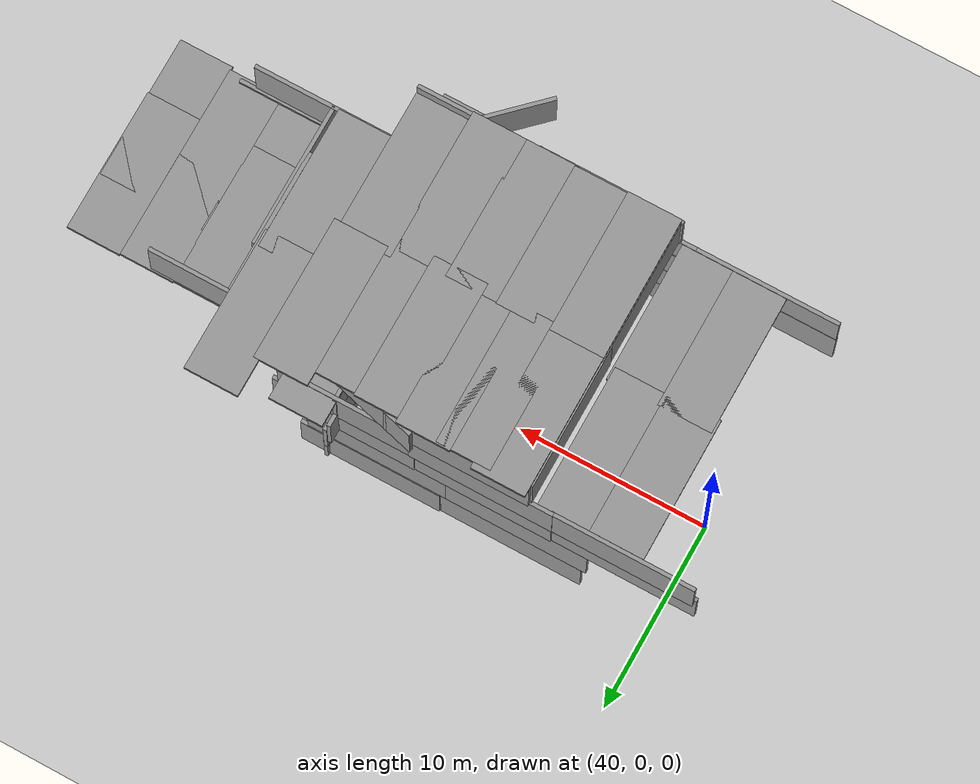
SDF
<sdf version="1.6">
 <world name="default">
  <model name="ground_plane">
   <static>1</static>
   <link name="link">
    <collision name="collision">
     <geometry><plane><normal>0 0 1</normal><size>5000 5000</size></plane></geometry>
     <surface><friction><ode><mu>100</mu><mu2>50</mu2></ode></friction></surface>
    </collision>
    <visual name="runway">
     <pose>0 0 0.005 0 -0 0</pose>
     <cast_shadows>0</cast_shadows>
     <geometry><plane><normal>0 0 1</normal><size>1829 45</size></plane></geometry>
     <material>
      <script><uri>file://media/materials/scripts/gazebo.material</uri><name>Gazebo/Runway</name></script>
     </material>
    </visual>
    <visual name="grass">
     <pose>0 0 -0.1 0 -0 0</pose>
     <cast_shadows>0</cast_shadows>
     <geometry><plane><normal>0 0 1</normal><size>5000 5000</size></plane></geometry>
     <material>
      <script><uri>file://media/materials/scripts/gazebo.material</uri><name>Gazebo/Grass</name></script>
     </material>
    </visual>
   </link>
  </model>
  <model name="grey_wall_0_clone_4">
   <static>1</static>
   <link name="link">
    <pose>0 0 1.4 0 -0 0</pose>
    <collision name="collision"><geometry><box><size>7.5 0.2 2.8</size></box></geometry></collision>
    <visual name="visual">
     <cast_shadows>0</cast_shadows>
     <geometry><box><size>7.5 0.2 2.8</size></box></geometry>
     <material>
      <script>
       <uri>model://grey_wall/materials/scripts</uri>
       <uri>model://grey_wall/materials/textures</uri>
       <name>vrc/grey_wall</name>
      </script>
     </material>
    </visual>
   </link>
   <pose>47.6141 5.23314 0 0 -0 0</pose>
  </model>
  <model name="grey_wall_0_clone_8">
   <static>1</static>
   <link name="link">
    <pose>0 0 1.4 0 -0 0</pose>
    <collision name="collision"><geometry><box><size>7.5 0.2 2.8</size></box></geometry></collision>
    <visual name="visual">
     <cast_shadows>0</cast_shadows>
     <geometry><box><size>7.5 0.2 2.8</size></box></geometry>
     <material>
      <script>
       <uri>model://grey_wall/materials/scripts</uri>
       <uri>model://grey_wall/materials/textures</uri>
       <name>vrc/grey_wall</name>
      </script>
     </material>
    </visual>
   </link>
   <pose>47.1692 -8.98031 0 0 -0 0</pose>
  </model>
  <model name="grey_wall_0_clone_8_clone">
   <static>1</static>
   <link name="link">
    <pose>0 0 1.4 0 -0 0</pose>
    <collision name="collision"><geometry><box><size>7.5 0.2 2.8</size></box></geometry></collision>
    <visual name="visual">
     <cast_shadows>0</cast_shadows>
     <geometry><box><size>7.5 0.2 2.8</size></box></geometry>
     <material>
      <script>
       <uri>model://grey_wall/materials/scripts</uri>
       <uri>model://grey_wall/materials/textures</uri>
       <name>vrc/grey_wall</name>
      </script>
     </material>
    </visual>
   </link>
   <pose>54.6088 -8.97122 0 0 -0 0</pose>
  </model>
  <model name="grey_wall_0_clone_10_clone_clone_0">
   <static>1</static>
   <link name="link">
    <pose>0 0 1.4 0 -0 0</pose>
    <collision name="collision"><geometry><box><size>7.5 0.2 2.8</size></box></geometry></collision>
    <visual name="visual">
     <cast_shadows>0</cast_shadows>
     <geometry><box><size>7.5 0.2 2.8</size></box></geometry>
     <material>
      <script>
       <uri>model://grey_wall/materials/scripts</uri>
       <uri>model://grey_wall/materials/textures</uri>
       <name>vrc/grey_wall</name>
      </script>
     </material>
    </visual>
   </link>
   <pose>47.2025 -8.86122 2.83061 0 -0 0</pose>
  </model>
  <model name="grey_wall_0_clone_10_clone_clone_1">
   <static>1</static>
   <link name="link">
    <pose>0 0 1.4 0 -0 0</pose>
    <collision name="collision"><geometry><box><size>7.5 0.2 2.8</size></box></geometry></collision>
    <visual name="visual">
     <cast_shadows>0</cast_shadows>
     <geometry><box><size>7.5 0.2 2.8</size></box></geometry>
     <material>
      <script>
       <uri>model://grey_wall/materials/scripts</uri>
       <uri>model://grey_wall/materials/textures</uri>
       <name>vrc/grey_wall</name>
      </script>
     </material>
    </visual>
   </link>
   <pose>54.6088 -8.89277 2.83061 0 -0 0</pose>
  </model>
  <model name="grey_wall_0_clone_10_clone_clone_7">
   <static>1</static>
   <link name="link">
    <pose>0 0 1.4 0 -0 0</pose>
    <collision name="collision"><geometry><box><size>7.5 0.2 2.8</size></box></geometry></collision>
    <visual name="visual">
     <cast_shadows>0</cast_shadows>
     <geometry><box><size>7.5 0.2 2.8</size></box></geometry>
     <material>
      <script>
       <uri>model://grey_wall/materials/scripts</uri>
       <uri>model://grey_wall/materials/textures</uri>
       <name>vrc/grey_wall</name>
      </script>
     </material>
    </visual>
   </link>
   <pose>47.3454 5.26753 2.83061 0 -0 0</pose>
  </model>
  <model name="grey_wall_0_clone_10_clone_clone_3_clone_clone_clone_clone_0_clone_3">
   <static>1</static>
   <link name="link">
    <pose>0 0 1.4 0 -0 0</pose>
    <collision name="collision"><geometry><box><size>7.5 0.2 2.8</size></box></geometry></collision>
    <visual name="visual">
     <cast_shadows>0</cast_shadows>
     <geometry><box><size>7.5 0.2 2.8</size></box></geometry>
     <material>
      <script>
       <uri>model://grey_wall/materials/scripts</uri>
       <uri>model://grey_wall/materials/textures</uri>
       <name>vrc/grey_wall</name>
      </script>
     </material>
    </visual>
   </link>
   <pose>44.5679 -5.15084 2.83061 0 0 -1.5708</pose>
  </model>
  <model name="grey_wall_0_clone_1_clone_clone_0_clone_1">
   <static>1</static>
   <link name="link">
    <pose>0 0 1.4 0 -0 0</pose>
    <collision name="collision"><geometry><box><size>7.5 0.2 2.8</size></box></geometry></collision>
    <visual name="visual">
     <cast_shadows>0</cast_shadows>
     <geometry><box><size>7.5 0.2 2.8</size></box></geometry>
     <material>
      <script>
       <uri>model://grey_wall/materials/scripts</uri>
       <uri>model://grey_wall/materials/textures</uri>
       <name>vrc/grey_wall</name>
      </script>
     </material>
    </visual>
   </link>
   <pose>44.6271 -4.93125 0 0 0 -1.5708</pose>
  </model>
  <model name="grey_wall_0_clone_10_clone_clone_clone">
   <static>1</static>
   <link name="link">
    <pose>0 0 1.4 0 -0 0</pose>
    <collision name="collision"><geometry><box><size>7.5 0.2 2.8</size></box></geometry></collision>
    <visual name="visual">
     <cast_shadows>0</cast_shadows>
     <geometry><box><size>7.5 0.2 2.8</size></box></geometry>
     <material>
      <script>
       <uri>model://grey_wall/materials/scripts</uri>
       <uri>model://grey_wall/materials/textures</uri>
       <name>vrc/grey_wall</name>
      </script>
     </material>
    </visual>
   </link>
   <pose>41.975 -8.8104 5.59678 0 -0 0</pose>
  </model>
  <model name="grey_wall_0_clone_10_clone_clone_clone_clone">
   <static>1</static>
   <link name="link">
    <pose>0 0 1.4 0 -0 0</pose>
    <collision name="collision"><geometry><box><size>7.5 0.2 2.8</size></box></geometry></collision>
    <visual name="visual">
     <cast_shadows>0</cast_shadows>
     <geometry><box><size>7.5 0.2 2.8</size></box></geometry>
     <material>
      <script>
       <uri>model://grey_wall/materials/scripts</uri>
       <uri>model://grey_wall/materials/textures</uri>
       <name>vrc/grey_wall</name>
      </script>
     </material>
    </visual>
   </link>
   <pose>41.7218 5.28242 5.59678 0 -0 0</pose>
  </model>
  <model name="grey_wall_0_clone_10_clone_clone_3_clone_clone_clone_clone_0_clone_3_clone">
   <static>1</static>
   <link name="link">
    <pose>0 0 1.4 0 -0 0</pose>
    <collision name="collision"><geometry><box><size>7.5 0.2 2.8</size></box></geometry></collision>
    <visual name="visual">
     <cast_shadows>0</cast_shadows>
     <geometry><box><size>7.5 0.2 2.8</size></box></geometry>
     <material>
      <script>
       <uri>model://grey_wall/materials/scripts</uri>
       <uri>model://grey_wall/materials/textures</uri>
       <name>vrc/grey_wall</name>
      </script>
     </material>
    </visual>
   </link>
   <pose>44.471 -4.98293 3.99558 0 0 -1.5708</pose>
  </model>
  <model name="grey_wall_0_clone_10_clone_clone_clone_clone_clone">
   <static>1</static>
   <link name="link">
    <pose>0 0 1.4 0 -0 0</pose>
    <collision name="collision"><geometry><box><size>7.5 0.2 2.8</size></box></geometry></collision>
    <visual name="visual">
     <cast_shadows>0</cast_shadows>
     <geometry><box><size>7.5 0.2 2.8</size></box></geometry>
     <material>
      <script>
       <uri>model://grey_wall/materials/scripts</uri>
       <uri>model://grey_wall/materials/textures</uri>
       <name>vrc/grey_wall</name>
      </script>
     </material>
    </visual>
   </link>
   <pose>41.8529 5.42931 7.79999 0 -0 0</pose>
  </model>
  <model name="grey_wall_0_clone_10_clone_clone_clone_clone_clone_clone_0">
   <static>1</static>
   <link name="link">
    <pose>0 0 1.4 0 -0 0</pose>
    <collision name="collision"><geometry><box><size>7.5 0.2 2.8</size></box></geometry></collision>
    <visual name="visual">
     <cast_shadows>0</cast_shadows>
     <geometry><box><size>7.5 0.2 2.8</size></box></geometry>
     <material>
      <script>
       <uri>model://grey_wall/materials/scripts</uri>
       <uri>model://grey_wall/materials/textures</uri>
       <name>vrc/grey_wall</name>
      </script>
     </material>
    </visual>
   </link>
   <pose>41.9909 -8.82373 7.79999 0 -0 0</pose>
  </model>
  <model name="grey_wall_0_clone_10_clone_clone_clone_clone_clone_clone_1">
   <static>1</static>
   <link name="link">
    <pose>0 0 1.4 0 -0 0</pose>
    <collision name="collision"><geometry><box><size>7.5 0.2 2.8</size></box></geometry></collision>
    <visual name="visual">
     <cast_shadows>0</cast_shadows>
     <geometry><box><size>7.5 0.2 2.8</size></box></geometry>
     <material>
      <script>
       <uri>model://grey_wall/materials/scripts</uri>
       <uri>model://grey_wall/materials/textures</uri>
       <name>vrc/grey_wall</name>
      </script>
     </material>
    </visual>
   </link>
   <pose>49.4543 -8.82382 7.79999 0 -0 0</pose>
  </model>
  <model name="grey_wall_0_clone_10_clone_clone_clone_clone_clone_clone_2">
   <static>1</static>
   <link name="link">
    <pose>0 0 1.4 0 -0 0</pose>
    <collision name="collision"><geometry><box><size>7.5 0.2 2.8</size></box></geometry></collision>
    <visual name="visual">
     <cast_shadows>0</cast_shadows>
     <geometry><box><size>7.5 0.2 2.8</size></box></geometry>
     <material>
      <script>
       <uri>model://grey_wall/materials/scripts</uri>
       <uri>model://grey_wall/materials/textures</uri>
       <name>vrc/grey_wall</name>
      </script>
     </material>
    </visual>
   </link>
   <pose>56.7314 -8.77633 7.79999 0 -0 0</pose>
  </model>
  <model name="grey_wall_0_clone_10_clone_clone_clone_clone_0">
   <static>1</static>
   <link name="link">
    <pose>0 0 1.4 0 -0 0</pose>
    <collision name="collision"><geometry><box><size>7.5 0.2 2.8</size></box></geometry></collision>
    <visual name="visual">
     <cast_shadows>0</cast_shadows>
     <geometry><box><size>7.5 0.2 2.8</size></box></geometry>
     <material>
      <script>
       <uri>model://grey_wall/materials/scripts</uri>
       <uri>model://grey_wall/materials/textures</uri>
       <name>vrc/grey_wall</name>
      </script>
     </material>
    </visual>
   </link>
   <pose>49.3929 -8.78376 5.59678 0 -0 0</pose>
  </model>
  <model name="grey_wall_0_clone_10_clone_clone_clone_clone_1">
   <static>1</static>
   <link name="link">
    <pose>0 0 1.4 0 -0 0</pose>
    <collision name="collision"><geometry><box><size>7.5 0.2 2.8</size></box></geometry></collision>
    <visual name="visual">
     <cast_shadows>0</cast_shadows>
     <geometry><box><size>7.5 0.2 2.8</size></box></geometry>
     <material>
      <script>
       <uri>model://grey_wall/materials/scripts</uri>
       <uri>model://grey_wall/materials/textures</uri>
       <name>vrc/grey_wall</name>
      </script>
     </material>
    </visual>
   </link>
   <pose>56.6989 -8.79144 5.59678 0 -0 0</pose>
  </model>
  <model name="grey_wall_0_clone_10_clone_clone_clone_clone_2">
   <static>1</static>
   <link name="link">
    <pose>0 0 1.4 0 -0 0</pose>
    <collision name="collision"><geometry><box><size>7.5 0.2 2.8</size></box></geometry></collision>
    <visual name="visual">
     <cast_shadows>0</cast_shadows>
     <geometry><box><size>7.5 0.2 2.8</size></box></geometry>
     <material>
      <script>
       <uri>model://grey_wall/materials/scripts</uri>
       <uri>model://grey_wall/materials/textures</uri>
       <name>vrc/grey_wall</name>
      </script>
     </material>
    </visual>
   </link>
   <pose>49.2314 5.35457 5.59678 0 -0 0</pose>
  </model>
  <model name="grey_wall_0_clone_10_clone_clone_clone_clone_3">
   <static>1</static>
   <link name="link">
    <pose>0 0 1.4 0 -0 0</pose>
    <collision name="collision"><geometry><box><size>7.5 0.2 2.8</size></box></geometry></collision>
    <visual name="visual">
     <cast_shadows>0</cast_shadows>
     <geometry><box><size>7.5 0.2 2.8</size></box></geometry>
     <material>
      <script>
       <uri>model://grey_wall/materials/scripts</uri>
       <uri>model://grey_wall/materials/textures</uri>
       <name>vrc/grey_wall</name>
      </script>
     </material>
    </visual>
   </link>
   <pose>56.4068 5.39588 5.59678 0 -0 0</pose>
  </model>
  <model name="grey_wall_0_clone_10_clone_clone_7_clone">
   <static>1</static>
   <link name="link">
    <pose>0 0 1.4 0 -0 0</pose>
    <collision name="collision"><geometry><box><size>7.5 0.2 2.8</size></box></geometry></collision>
    <visual name="visual">
     <cast_shadows>0</cast_shadows>
     <geometry><box><size>7.5 0.2 2.8</size></box></geometry>
     <material>
      <script>
       <uri>model://grey_wall/materials/scripts</uri>
       <uri>model://grey_wall/materials/textures</uri>
       <name>vrc/grey_wall</name>
      </script>
     </material>
    </visual>
   </link>
   <pose>54.7342 5.2637 2.83061 0 -0 0</pose>
  </model>
  <model name="grey_wall_0_clone_4_clone">
   <static>1</static>
   <link name="link">
    <pose>0 0 1.4 0 -0 0</pose>
    <collision name="collision"><geometry><box><size>7.5 0.2 2.8</size></box></geometry></collision>
    <visual name="visual">
     <cast_shadows>0</cast_shadows>
     <geometry><box><size>7.5 0.2 2.8</size></box></geometry>
     <material>
      <script>
       <uri>model://grey_wall/materials/scripts</uri>
       <uri>model://grey_wall/materials/textures</uri>
       <name>vrc/grey_wall</name>
      </script>
     </material>
    </visual>
   </link>
   <pose>55.1277 5.29997 0 0 -0 0</pose>
  </model>
  <model name="grey_wall_0_clone_10_clone_clone_clone_clone_clone_clone_clone_clone">
   <static>1</static>
   <link name="link">
    <pose>0 0 1.4 0 -0 0</pose>
    <collision name="collision"><geometry><box><size>7.5 0.2 2.8</size></box></geometry></collision>
    <visual name="visual">
     <cast_shadows>0</cast_shadows>
     <geometry><box><size>7.5 0.2 2.8</size></box></geometry>
     <material>
      <script>
       <uri>model://grey_wall/materials/scripts</uri>
       <uri>model://grey_wall/materials/textures</uri>
       <name>vrc/grey_wall</name>
      </script>
     </material>
    </visual>
   </link>
   <pose>56.7492 -4.97728 7.79999 0 -0 1.5708</pose>
  </model>
  <model name="grey_wall_0_clone_10_clone_clone_clone_clone_clone_clone_clone_clone_0">
   <static>1</static>
   <link name="link">
    <pose>0 0 1.4 0 -0 0</pose>
    <collision name="collision"><geometry><box><size>7.5 0.2 2.8</size></box></geometry></collision>
    <visual name="visual">
     <cast_shadows>0</cast_shadows>
     <geometry><box><size>7.5 0.2 2.8</size></box></geometry>
     <material>
      <script>
       <uri>model://grey_wall/materials/scripts</uri>
       <uri>model://grey_wall/materials/textures</uri>
       <name>vrc/grey_wall</name>
      </script>
     </material>
    </visual>
   </link>
   <pose>56.7606 1.83677 7.79999 0 -0 1.5708</pose>
  </model>
  <model name="grey_wall_0_clone_10_clone_clone_3_clone_clone_clone_clone_0_clone_4_clone_clone">
   <static>1</static>
   <link name="link">
    <pose>0 0 1.4 0 -0 0</pose>
    <collision name="collision"><geometry><box><size>7.5 0.2 2.8</size></box></geometry></collision>
    <visual name="visual">
     <cast_shadows>0</cast_shadows>
     <geometry><box><size>7.5 0.2 2.8</size></box></geometry>
     <material>
      <script>
       <uri>model://grey_wall/materials/scripts</uri>
       <uri>model://grey_wall/materials/textures</uri>
       <name>vrc/grey_wall</name>
      </script>
     </material>
    </visual>
   </link>
   <pose>56.7547 -5.00739 5.58502 0 0 -1.5708</pose>
  </model>
  <model name="grey_wall_0_clone_10_clone_clone_3_clone_clone_clone_clone_0_clone_4_clone_clone_0">
   <static>1</static>
   <link name="link">
    <pose>0 0 1.4 0 -0 0</pose>
    <collision name="collision"><geometry><box><size>7.5 0.2 2.8</size></box></geometry></collision>
    <visual name="visual">
     <cast_shadows>0</cast_shadows>
     <geometry><box><size>7.5 0.2 2.8</size></box></geometry>
     <material>
      <script>
       <uri>model://grey_wall/materials/scripts</uri>
       <uri>model://grey_wall/materials/textures</uri>
       <name>vrc/grey_wall</name>
      </script>
     </material>
    </visual>
   </link>
   <pose>56.7473 2.48643 5.58502 0 0 -1.5708</pose>
  </model>
  <model name="grey_wall_0_clone_1_clone_clone_1_clone">
   <static>1</static>
   <link name="link">
    <pose>0 0 1.4 0 -0 0</pose>
    <collision name="collision"><geometry><box><size>7.5 0.2 2.8</size></box></geometry></collision>
    <visual name="visual">
     <cast_shadows>0</cast_shadows>
     <geometry><box><size>7.5 0.2 2.8</size></box></geometry>
     <material>
      <script>
       <uri>model://grey_wall/materials/scripts</uri>
       <uri>model://grey_wall/materials/textures</uri>
       <name>vrc/grey_wall</name>
      </script>
     </material>
    </visual>
   </link>
   <pose>57.4251 1.83768 0 0 0 -1.5708</pose>
  </model>
  <model name="grey_wall_0_clone_1_clone_clone_1_clone_0">
   <static>1</static>
   <link name="link">
    <pose>0 0 1.4 0 -0 0</pose>
    <collision name="collision"><geometry><box><size>7.5 0.2 2.8</size></box></geometry></collision>
    <visual name="visual">
     <cast_shadows>0</cast_shadows>
     <geometry><box><size>7.5 0.2 2.8</size></box></geometry>
     <material>
      <script>
       <uri>model://grey_wall/materials/scripts</uri>
       <uri>model://grey_wall/materials/textures</uri>
       <name>vrc/grey_wall</name>
      </script>
     </material>
    </visual>
   </link>
   <pose>57.4415 -5.29688 0 0 0 -1.5708</pose>
  </model>
  <model name="grey_wall_0_clone_10_clone_clone_3_clone_clone_clone_clone_0_clone_5">
   <static>1</static>
   <link name="link">
    <pose>0 0 1.4 0 -0 0</pose>
    <collision name="collision"><geometry><box><size>7.5 0.2 2.8</size></box></geometry></collision>
    <visual name="visual">
     <cast_shadows>0</cast_shadows>
     <geometry><box><size>7.5 0.2 2.8</size></box></geometry>
     <material>
      <script>
       <uri>model://grey_wall/materials/scripts</uri>
       <uri>model://grey_wall/materials/textures</uri>
       <name>vrc/grey_wall</name>
      </script>
     </material>
    </visual>
   </link>
   <pose>57.3584 -5.15432 2.83061 0 0 -1.5708</pose>
  </model>
  <model name="grey_wall_0_clone_10_clone_clone_3_clone_clone_clone_clone_0_clone_6">
   <static>1</static>
   <link name="link">
    <pose>0 0 1.4 0 -0 0</pose>
    <collision name="collision"><geometry><box><size>7.5 0.2 2.8</size></box></geometry></collision>
    <visual name="visual">
     <cast_shadows>0</cast_shadows>
     <geometry><box><size>7.5 0.2 2.8</size></box></geometry>
     <material>
      <script>
       <uri>model://grey_wall/materials/scripts</uri>
       <uri>model://grey_wall/materials/textures</uri>
       <name>vrc/grey_wall</name>
      </script>
     </material>
    </visual>
   </link>
   <pose>57.2411 2.09599 2.83061 0 0 -1.5708</pose>
  </model>
  <model name="grey_wall_0_clone_10_clone_0_clone_clone_clone_clone_clone_0_clone_clone_0">
   <static>1</static>
   <link name="link">
    <pose>0 0 1.4 0 -0 0</pose>
    <collision name="collision"><geometry><box><size>7.5 0.2 2.8</size></box></geometry></collision>
    <visual name="visual">
     <cast_shadows>0</cast_shadows>
     <geometry><box><size>7.5 0.2 2.8</size></box></geometry>
     <material>
      <script>
       <uri>model://grey_wall/materials/scripts</uri>
       <uri>model://grey_wall/materials/textures</uri>
       <name>vrc/grey_wall</name>
      </script>
     </material>
    </visual>
   </link>
   <pose>43.637 1.56772 10.463 1.5708 0 -1.5708</pose>
  </model>
  <model name="grey_wall_0_clone_10_clone_0_clone_clone_clone_clone_clone_0_clone_clone_1">
   <static>1</static>
   <link name="link">
    <pose>0 0 1.4 0 -0 0</pose>
    <collision name="collision"><geometry><box><size>7.5 0.2 2.8</size></box></geometry></collision>
    <visual name="visual">
     <cast_shadows>0</cast_shadows>
     <geometry><box><size>7.5 0.2 2.8</size></box></geometry>
     <material>
      <script>
       <uri>model://grey_wall/materials/scripts</uri>
       <uri>model://grey_wall/materials/textures</uri>
       <name>vrc/grey_wall</name>
      </script>
     </material>
    </visual>
   </link>
   <pose>46.301 1.69461 10.463 1.5708 0 -1.5708</pose>
  </model>
  <model name="grey_wall_0_clone_10_clone_0_clone_clone_clone_clone_clone_0_clone_clone_2">
   <static>1</static>
   <link name="link">
    <pose>0 0 1.4 0 -0 0</pose>
    <collision name="collision"><geometry><box><size>7.5 0.2 2.8</size></box></geometry></collision>
    <visual name="visual">
     <cast_shadows>0</cast_shadows>
     <geometry><box><size>7.5 0.2 2.8</size></box></geometry>
     <material>
      <script>
       <uri>model://grey_wall/materials/scripts</uri>
       <uri>model://grey_wall/materials/textures</uri>
       <name>vrc/grey_wall</name>
      </script>
     </material>
    </visual>
   </link>
   <pose>43.7518 -5.15964 10.463 1.5708 0 -1.5708</pose>
  </model>
  <model name="grey_wall_0_clone_10_clone_0_clone_clone_clone_clone_clone_0_clone_clone_3">
   <static>1</static>
   <link name="link">
    <pose>0 0 1.4 0 -0 0</pose>
    <collision name="collision"><geometry><box><size>7.5 0.2 2.8</size></box></geometry></collision>
    <visual name="visual">
     <cast_shadows>0</cast_shadows>
     <geometry><box><size>7.5 0.2 2.8</size></box></geometry>
     <material>
      <script>
       <uri>model://grey_wall/materials/scripts</uri>
       <uri>model://grey_wall/materials/textures</uri>
       <name>vrc/grey_wall</name>
      </script>
     </material>
    </visual>
   </link>
   <pose>46.3835 -5.11339 10.463 1.5708 0 -1.5708</pose>
  </model>
  <model name="grey_wall_0_clone_10_clone_0_clone_clone_clone_clone_clone_0_clone_clone_4">
   <static>1</static>
   <link name="link">
    <pose>0 0 1.4 0 -0 0</pose>
    <collision name="collision"><geometry><box><size>7.5 0.2 2.8</size></box></geometry></collision>
    <visual name="visual">
     <cast_shadows>0</cast_shadows>
     <geometry><box><size>7.5 0.2 2.8</size></box></geometry>
     <material>
      <script>
       <uri>model://grey_wall/materials/scripts</uri>
       <uri>model://grey_wall/materials/textures</uri>
       <name>vrc/grey_wall</name>
      </script>
     </material>
    </visual>
   </link>
   <pose>59.5152 0.608103 10.463 1.5708 0 -1.5708</pose>
  </model>
  <model name="grey_wall_0_clone_10_clone_0_clone_clone_clone_clone_clone_0_clone_clone_5">
   <static>1</static>
   <link name="link">
    <pose>0 0 1.4 0 -0 0</pose>
    <collision name="collision"><geometry><box><size>7.5 0.2 2.8</size></box></geometry></collision>
    <visual name="visual">
     <cast_shadows>0</cast_shadows>
     <geometry><box><size>7.5 0.2 2.8</size></box></geometry>
     <material>
      <script>
       <uri>model://grey_wall/materials/scripts</uri>
       <uri>model://grey_wall/materials/textures</uri>
       <name>vrc/grey_wall</name>
      </script>
     </material>
    </visual>
   </link>
   <pose>59.5424 -6.09957 10.463 1.5708 0 -1.5708</pose>
  </model>
  <model name="grey_wall_0_clone_10_clone_0_clone_clone_clone_clone_clone_0_clone_clone_6">
   <static>1</static>
   <link name="link">
    <pose>0 0 1.4 0 -0 0</pose>
    <collision name="collision"><geometry><box><size>7.5 0.2 2.8</size></box></geometry></collision>
    <visual name="visual">
     <cast_shadows>0</cast_shadows>
     <geometry><box><size>7.5 0.2 2.8</size></box></geometry>
     <material>
      <script>
       <uri>model://grey_wall/materials/scripts</uri>
       <uri>model://grey_wall/materials/textures</uri>
       <name>vrc/grey_wall</name>
      </script>
     </material>
    </visual>
   </link>
   <pose>59.4584 3.13808 10.463 1.5708 0 -1.5708</pose>
  </model>
  <model name="grey_wall_0_clone_10_clone_clone_clone_clone_clone_clone_3">
   <static>1</static>
   <link name="link">
    <pose>0 0 1.4 0 -0 0</pose>
    <collision name="collision"><geometry><box><size>7.5 0.2 2.8</size></box></geometry></collision>
    <visual name="visual">
     <cast_shadows>0</cast_shadows>
     <geometry><box><size>7.5 0.2 2.8</size></box></geometry>
     <material>
      <script>
       <uri>model://grey_wall/materials/scripts</uri>
       <uri>model://grey_wall/materials/textures</uri>
       <name>vrc/grey_wall</name>
      </script>
     </material>
    </visual>
   </link>
   <pose>49.1736 5.45278 7.79999 0 -0 0</pose>
  </model>
  <model name="grey_wall_0_clone_10_clone_clone_clone_clone_clone_clone_4">
   <static>1</static>
   <link name="link">
    <pose>0 0 1.4 0 -0 0</pose>
    <collision name="collision"><geometry><box><size>7.5 0.2 2.8</size></box></geometry></collision>
    <visual name="visual">
     <cast_shadows>0</cast_shadows>
     <geometry><box><size>7.5 0.2 2.8</size></box></geometry>
     <material>
      <script>
       <uri>model://grey_wall/materials/scripts</uri>
       <uri>model://grey_wall/materials/textures</uri>
       <name>vrc/grey_wall</name>
      </script>
     </material>
    </visual>
   </link>
   <pose>56.0548 5.43314 7.79999 0 -0 0</pose>
  </model>
  <model name="grey_wall_0_clone_10_clone_clone_3_clone_clone_clone_clone_0_clone_4_clone_0">
   <static>1</static>
   <link name="link">
    <pose>0 0 1.4 0 -0 0</pose>
    <collision name="collision"><geometry><box><size>7.5 0.2 2.8</size></box></geometry></collision>
    <visual name="visual">
     <cast_shadows>0</cast_shadows>
     <geometry><box><size>7.5 0.2 2.8</size></box></geometry>
     <material>
      <script>
       <uri>model://grey_wall/materials/scripts</uri>
       <uri>model://grey_wall/materials/textures</uri>
       <name>vrc/grey_wall</name>
      </script>
     </material>
    </visual>
   </link>
   <pose>46.6497 -4.93927 10.7911 0 0 -1.5708</pose>
  </model>
  <model name="grey_wall_0_clone_10_clone_clone_3_clone_clone_clone_clone_0_clone_4_clone_0_clone">
   <static>1</static>
   <link name="link">
    <pose>0 0 1.4 0 -0 0</pose>
    <collision name="collision"><geometry><box><size>7.5 0.2 2.8</size></box></geometry></collision>
    <visual name="visual">
     <cast_shadows>0</cast_shadows>
     <geometry><box><size>7.5 0.2 2.8</size></box></geometry>
     <material>
      <script>
       <uri>model://grey_wall/materials/scripts</uri>
       <uri>model://grey_wall/materials/textures</uri>
       <name>vrc/grey_wall</name>
      </script>
     </material>
    </visual>
   </link>
   <pose>46.6142 1.75301 10.7911 0 0 -1.5708</pose>
  </model>
  <model name="grey_wall_0_clone_10_clone_clone_3_clone_clone_clone_clone_0_clone_4_clone_0_clone_clone">
   <static>1</static>
   <link name="link">
    <pose>0 0 1.4 0 -0 0</pose>
    <collision name="collision"><geometry><box><size>7.5 0.2 2.8</size></box></geometry></collision>
    <visual name="visual">
     <cast_shadows>0</cast_shadows>
     <geometry><box><size>7.5 0.2 2.8</size></box></geometry>
     <material>
      <script>
       <uri>model://grey_wall/materials/scripts</uri>
       <uri>model://grey_wall/materials/textures</uri>
       <name>vrc/grey_wall</name>
      </script>
     </material>
    </visual>
   </link>
   <pose>50.3444 5.61422 10.7911 0 0 -4e-06</pose>
  </model>
  <model name="grey_wall_0_clone_10_clone_clone_3_clone_clone_clone_clone_0_clone_4_clone_0_clone_clone_clone">
   <static>1</static>
   <link name="link">
    <pose>0 0 1.4 0 -0 0</pose>
    <collision name="collision"><geometry><box><size>7.5 0.2 2.8</size></box></geometry></collision>
    <visual name="visual">
     <cast_shadows>0</cast_shadows>
     <geometry><box><size>7.5 0.2 2.8</size></box></geometry>
     <material>
      <script>
       <uri>model://grey_wall/materials/scripts</uri>
       <uri>model://grey_wall/materials/textures</uri>
       <name>vrc/grey_wall</name>
      </script>
     </material>
    </visual>
   </link>
   <pose>56.137 5.03352 10.7911 0 0 -0.259538</pose>
  </model>
  <model name="grey_wall_0_clone_10_clone_clone_3_clone_clone_clone_clone_0_clone_4_clone_0_clone_clone_clone_0">
   <static>1</static>
   <link name="link">
    <pose>0 0 1.4 0 -0 0</pose>
    <collision name="collision"><geometry><box><size>7.5 0.2 2.8</size></box></geometry></collision>
    <visual name="visual">
     <cast_shadows>0</cast_shadows>
     <geometry><box><size>7.5 0.2 2.8</size></box></geometry>
     <material>
      <script>
       <uri>model://grey_wall/materials/scripts</uri>
       <uri>model://grey_wall/materials/textures</uri>
       <name>vrc/grey_wall</name>
      </script>
     </material>
    </visual>
   </link>
   <pose>50.2149 -8.74353 10.7911 0 0 -4e-06</pose>
  </model>
  <model name="grey_wall_0_clone_10_clone_clone_3_clone_clone_clone_clone_0_clone_4_clone_0_clone_clone_clone_1">
   <static>1</static>
   <link name="link">
    <pose>0 0 1.4 0 -0 0</pose>
    <collision name="collision"><geometry><box><size>7.5 0.2 2.8</size></box></geometry></collision>
    <visual name="visual">
     <cast_shadows>0</cast_shadows>
     <geometry><box><size>7.5 0.2 2.8</size></box></geometry>
     <material>
      <script>
       <uri>model://grey_wall/materials/scripts</uri>
       <uri>model://grey_wall/materials/textures</uri>
       <name>vrc/grey_wall</name>
      </script>
     </material>
    </visual>
   </link>
   <pose>56.5286 -8.68234 10.7911 0 0 -4e-06</pose>
  </model>
  <model name="grey_wall_0_clone_10_clone_clone_3_clone_clone_clone_clone_0_clone_4_clone_0_clone_clone_clone_2">
   <static>1</static>
   <link name="link">
    <pose>0 0 1.4 0 -0 0</pose>
    <collision name="collision"><geometry><box><size>7.5 0.2 2.8</size></box></geometry></collision>
    <visual name="visual">
     <cast_shadows>0</cast_shadows>
     <geometry><box><size>7.5 0.2 2.8</size></box></geometry>
     <material>
      <script>
       <uri>model://grey_wall/materials/scripts</uri>
       <uri>model://grey_wall/materials/textures</uri>
       <name>vrc/grey_wall</name>
      </script>
     </material>
    </visual>
   </link>
   <pose>57.1038 -8.61552 10.7911 0 -0 0.772573</pose>
  </model>
  <model name="grey_wall_0_clone_10_clone_0_clone_clone_clone_clone_clone_0_clone_clone_0_clone">
   <static>1</static>
   <link name="link">
    <pose>0 0 1.4 0 -0 0</pose>
    <collision name="collision"><geometry><box><size>7.5 0.2 2.8</size></box></geometry></collision>
    <visual name="visual">
     <cast_shadows>0</cast_shadows>
     <geometry><box><size>7.5 0.2 2.8</size></box></geometry>
     <material>
      <script>
       <uri>model://grey_wall/materials/scripts</uri>
       <uri>model://grey_wall/materials/textures</uri>
       <name>vrc/grey_wall</name>
      </script>
     </material>
    </visual>
   </link>
   <pose>68.8307 -2.31248 10.463 1.5708 0 -1.5708</pose>
  </model>
  <model name="grey_wall_0_clone_10_clone_0_clone_clone_clone_clone_clone_0_clone_clone_0_clone_0">
   <static>1</static>
   <link name="link">
    <pose>0 0 1.4 0 -0 0</pose>
    <collision name="collision"><geometry><box><size>7.5 0.2 2.8</size></box></geometry></collision>
    <visual name="visual">
     <cast_shadows>0</cast_shadows>
     <geometry><box><size>7.5 0.2 2.8</size></box></geometry>
     <material>
      <script>
       <uri>model://grey_wall/materials/scripts</uri>
       <uri>model://grey_wall/materials/textures</uri>
       <name>vrc/grey_wall</name>
      </script>
     </material>
    </visual>
   </link>
   <pose>71.5696 -2.47806 10.463 1.5708 0 -1.5708</pose>
  </model>
  <model name="grey_wall_0_clone_10_clone_0_clone_clone_clone_clone_clone_0_clone_clone_0_clone_1">
   <static>1</static>
   <link name="link">
    <pose>0 0 1.4 0 -0 0</pose>
    <collision name="collision"><geometry><box><size>7.5 0.2 2.8</size></box></geometry></collision>
    <visual name="visual">
     <cast_shadows>0</cast_shadows>
     <geometry><box><size>7.5 0.2 2.8</size></box></geometry>
     <material>
      <script>
       <uri>model://grey_wall/materials/scripts</uri>
       <uri>model://grey_wall/materials/textures</uri>
       <name>vrc/grey_wall</name>
      </script>
     </material>
    </visual>
   </link>
   <pose>71.6215 0.501007 10.463 1.5708 0 -1.5708</pose>
  </model>
  <model name="grey_wall_0_clone_10_clone_0_clone_clone_clone_clone_clone_0_clone_clone_0_clone_2">
   <static>1</static>
   <link name="link">
    <pose>0 0 1.4 0 -0 0</pose>
    <collision name="collision"><geometry><box><size>7.5 0.2 2.8</size></box></geometry></collision>
    <visual name="visual">
     <cast_shadows>0</cast_shadows>
     <geometry><box><size>7.5 0.2 2.8</size></box></geometry>
     <material>
      <script>
       <uri>model://grey_wall/materials/scripts</uri>
       <uri>model://grey_wall/materials/textures</uri>
       <name>vrc/grey_wall</name>
      </script>
     </material>
    </visual>
   </link>
   <pose>68.8284 0.44659 10.463 1.5708 0 -1.5708</pose>
  </model>
  <model name="grey_wall_0_clone_10_clone_0_clone_clone_clone_clone_clone_0_clone_clone_0_clone_3">
   <static>1</static>
   <link name="link">
    <pose>0 0 1.4 0 -0 0</pose>
    <collision name="collision"><geometry><box><size>7.5 0.2 2.8</size></box></geometry></collision>
    <visual name="visual">
     <cast_shadows>0</cast_shadows>
     <geometry><box><size>7.5 0.2 2.8</size></box></geometry>
     <material>
      <script>
       <uri>model://grey_wall/materials/scripts</uri>
       <uri>model://grey_wall/materials/textures</uri>
       <name>vrc/grey_wall</name>
      </script>
     </material>
    </visual>
   </link>
   <pose>66.1372 -2.38663 10.463 1.5708 0 -1.5708</pose>
  </model>
  <model name="grey_wall_0_clone_10_clone_0_clone_clone_clone_clone_clone_0_clone_clone_0_clone_4">
   <static>1</static>
   <link name="link">
    <pose>0 0 1.4 0 -0 0</pose>
    <collision name="collision"><geometry><box><size>7.5 0.2 2.8</size></box></geometry></collision>
    <visual name="visual">
     <cast_shadows>0</cast_shadows>
     <geometry><box><size>7.5 0.2 2.8</size></box></geometry>
     <material>
      <script>
       <uri>model://grey_wall/materials/scripts</uri>
       <uri>model://grey_wall/materials/textures</uri>
       <name>vrc/grey_wall</name>
      </script>
     </material>
    </visual>
   </link>
   <pose>66.064 0.39816 10.463 1.5708 0 -1.5708</pose>
  </model>
  <model name="grey_wall_0_clone_10_clone_clone_clone_clone_1_clone">
   <static>1</static>
   <link name="link">
    <pose>0 0 1.4 0 -0 0</pose>
    <collision name="collision"><geometry><box><size>7.5 0.2 2.8</size></box></geometry></collision>
    <visual name="visual">
     <cast_shadows>0</cast_shadows>
     <geometry><box><size>7.5 0.2 2.8</size></box></geometry>
     <material>
      <script>
       <uri>model://grey_wall/materials/scripts</uri>
       <uri>model://grey_wall/materials/textures</uri>
       <name>vrc/grey_wall</name>
      </script>
     </material>
    </visual>
   </link>
   <pose>64.8186 -5.81914 5.59678 0 -0 0</pose>
  </model>
  <model name="grey_wall_0_clone_10_clone_clone_clone_clone_1_clone_0">
   <static>1</static>
   <link name="link">
    <pose>0 0 1.4 0 -0 0</pose>
    <collision name="collision"><geometry><box><size>7.5 0.2 2.8</size></box></geometry></collision>
    <visual name="visual">
     <cast_shadows>0</cast_shadows>
     <geometry><box><size>7.5 0.2 2.8</size></box></geometry>
     <material>
      <script>
       <uri>model://grey_wall/materials/scripts</uri>
       <uri>model://grey_wall/materials/textures</uri>
       <name>vrc/grey_wall</name>
      </script>
     </material>
    </visual>
   </link>
   <pose>64.387 -5.78396 7.93864 0 -0 0</pose>
  </model>
  <model name="grey_wall_0_clone_10_clone_clone_3_clone_clone_clone_clone_0_clone_4_clone_0_clone_clone_clone_3">
   <static>1</static>
   <link name="link">
    <pose>0 0 1.4 0 -0 0</pose>
    <collision name="collision"><geometry><box><size>7.5 0.2 2.8</size></box></geometry></collision>
    <visual name="visual">
     <cast_shadows>0</cast_shadows>
     <geometry><box><size>7.5 0.2 2.8</size></box></geometry>
     <material>
      <script>
       <uri>model://grey_wall/materials/scripts</uri>
       <uri>model://grey_wall/materials/textures</uri>
       <name>vrc/grey_wall</name>
      </script>
     </material>
    </visual>
   </link>
   <pose>63.4459 4.07643 10.7911 0 0 -4e-06</pose>
  </model>
  <model name="grey_wall_0_clone_10_clone_clone_3_clone_clone_clone_clone_0_clone_4_clone_0_clone_clone_clone_4">
   <static>1</static>
   <link name="link">
    <pose>0 0 1.4 0 -0 0</pose>
    <collision name="collision"><geometry><box><size>7.5 0.2 2.8</size></box></geometry></collision>
    <visual name="visual">
     <cast_shadows>0</cast_shadows>
     <geometry><box><size>7.5 0.2 2.8</size></box></geometry>
     <material>
      <script>
       <uri>model://grey_wall/materials/scripts</uri>
       <uri>model://grey_wall/materials/textures</uri>
       <name>vrc/grey_wall</name>
      </script>
     </material>
    </visual>
   </link>
   <pose>63.5335 -5.90348 10.7911 0 0 -4e-06</pose>
  </model>
  <model name="grey_wall_0_clone_10_clone_clone_3_clone_clone_clone_clone_0_clone_4_clone_0_clone_0">
   <static>1</static>
   <link name="link">
    <pose>0 0 1.4 0 -0 0</pose>
    <collision name="collision"><geometry><box><size>7.5 0.2 2.8</size></box></geometry></collision>
    <visual name="visual">
     <cast_shadows>0</cast_shadows>
     <geometry><box><size>7.5 0.2 2.8</size></box></geometry>
     <material>
      <script>
       <uri>model://grey_wall/materials/scripts</uri>
       <uri>model://grey_wall/materials/textures</uri>
       <name>vrc/grey_wall</name>
      </script>
     </material>
    </visual>
   </link>
   <pose>62.994 0.251021 10.7911 0 0 -1.5708</pose>
  </model>
  <model name="grey_wall_0_clone_10_clone_clone_3_clone_clone_clone_clone_0_clone_4_clone_0_clone_1">
   <static>1</static>
   <link name="link">
    <pose>0 0 1.4 0 -0 0</pose>
    <collision name="collision"><geometry><box><size>7.5 0.2 2.8</size></box></geometry></collision>
    <visual name="visual">
     <cast_shadows>0</cast_shadows>
     <geometry><box><size>7.5 0.2 2.8</size></box></geometry>
     <material>
      <script>
       <uri>model://grey_wall/materials/scripts</uri>
       <uri>model://grey_wall/materials/textures</uri>
       <name>vrc/grey_wall</name>
      </script>
     </material>
    </visual>
   </link>
   <pose>63.1411 -2.1807 10.7911 0 0 -1.5708</pose>
  </model>
  <model name="grey_wall_0_clone_10_clone_0_clone_clone_clone_clone_clone_0_clone_clone_2_clone">
   <static>1</static>
   <link name="link">
    <pose>0 0 1.4 0 -0 0</pose>
    <collision name="collision"><geometry><box><size>7.5 0.2 2.8</size></box></geometry></collision>
    <visual name="visual">
     <cast_shadows>0</cast_shadows>
     <geometry><box><size>7.5 0.2 2.8</size></box></geometry>
     <material>
      <script>
       <uri>model://grey_wall/materials/scripts</uri>
       <uri>model://grey_wall/materials/textures</uri>
       <name>vrc/grey_wall</name>
      </script>
     </material>
    </visual>
   </link>
   <pose>49.3834 -5.04443 13.7201 1.5708 0 -1.5708</pose>
  </model>
  <model name="grey_wall_0_clone_10_clone_0_clone_clone_clone_clone_clone_0_clone_clone_2_clone_clone">
   <static>1</static>
   <link name="link">
    <pose>0 0 1.4 0 -0 0</pose>
    <collision name="collision"><geometry><box><size>7.5 0.2 2.8</size></box></geometry></collision>
    <visual name="visual">
     <cast_shadows>0</cast_shadows>
     <geometry><box><size>7.5 0.2 2.8</size></box></geometry>
     <material>
      <script>
       <uri>model://grey_wall/materials/scripts</uri>
       <uri>model://grey_wall/materials/textures</uri>
       <name>vrc/grey_wall</name>
      </script>
     </material>
    </visual>
   </link>
   <pose>52.0979 -4.96302 13.7201 1.5708 0 -1.5708</pose>
  </model>
  <model name="grey_wall_0_clone_10_clone_0_clone_clone_clone_clone_clone_0_clone_clone_2_clone_clone_0">
   <static>1</static>
   <link name="link">
    <pose>0 0 1.4 0 -0 0</pose>
    <collision name="collision"><geometry><box><size>7.5 0.2 2.8</size></box></geometry></collision>
    <visual name="visual">
     <cast_shadows>0</cast_shadows>
     <geometry><box><size>7.5 0.2 2.8</size></box></geometry>
     <material>
      <script>
       <uri>model://grey_wall/materials/scripts</uri>
       <uri>model://grey_wall/materials/textures</uri>
       <name>vrc/grey_wall</name>
      </script>
     </material>
    </visual>
   </link>
   <pose>54.7269 -5.00057 13.7201 1.5708 0 -1.5708</pose>
  </model>
  <model name="grey_wall_0_clone_10_clone_0_clone_clone_clone_clone_clone_0_clone_clone_2_clone_clone_1">
   <static>1</static>
   <link name="link">
    <pose>0 0 1.4 0 -0 0</pose>
    <collision name="collision"><geometry><box><size>7.5 0.2 2.8</size></box></geometry></collision>
    <visual name="visual">
     <cast_shadows>0</cast_shadows>
     <geometry><box><size>7.5 0.2 2.8</size></box></geometry>
     <material>
      <script>
       <uri>model://grey_wall/materials/scripts</uri>
       <uri>model://grey_wall/materials/textures</uri>
       <name>vrc/grey_wall</name>
      </script>
     </material>
    </visual>
   </link>
   <pose>57.4158 -5.00265 13.7201 1.5708 0 -1.5708</pose>
  </model>
  <model name="grey_wall_0_clone_10_clone_0_clone_clone_clone_clone_clone_0_clone_clone_2_clone_clone_2">
   <static>1</static>
   <link name="link">
    <pose>0 0 1.4 0 -0 0</pose>
    <collision name="collision"><geometry><box><size>7.5 0.2 2.8</size></box></geometry></collision>
    <visual name="visual">
     <cast_shadows>0</cast_shadows>
     <geometry><box><size>7.5 0.2 2.8</size></box></geometry>
     <material>
      <script>
       <uri>model://grey_wall/materials/scripts</uri>
       <uri>model://grey_wall/materials/textures</uri>
       <name>vrc/grey_wall</name>
      </script>
     </material>
    </visual>
   </link>
   <pose>60.1296 -4.54385 13.7201 1.5708 0 -1.5708</pose>
  </model>
  <model name="grey_wall_0_clone_10_clone_0_clone_clone_clone_clone_clone_0_clone_clone_2_clone_clone_3">
   <static>1</static>
   <link name="link">
    <pose>0 0 1.4 0 -0 0</pose>
    <collision name="collision"><geometry><box><size>7.5 0.2 2.8</size></box></geometry></collision>
    <visual name="visual">
     <cast_shadows>0</cast_shadows>
     <geometry><box><size>7.5 0.2 2.8</size></box></geometry>
     <material>
      <script>
       <uri>model://grey_wall/materials/scripts</uri>
       <uri>model://grey_wall/materials/textures</uri>
       <name>vrc/grey_wall</name>
      </script>
     </material>
    </visual>
   </link>
   <pose>62.8495 -2.13102 13.7201 1.5708 0 -1.5708</pose>
  </model>
  <model name="grey_wall_0_clone_10_clone_0_clone_clone_clone_clone_clone_0_clone_clone_2_clone_clone_4">
   <static>1</static>
   <link name="link">
    <pose>0 0 1.4 0 -0 0</pose>
    <collision name="collision"><geometry><box><size>7.5 0.2 2.8</size></box></geometry></collision>
    <visual name="visual">
     <cast_shadows>0</cast_shadows>
     <geometry><box><size>7.5 0.2 2.8</size></box></geometry>
     <material>
      <script>
       <uri>model://grey_wall/materials/scripts</uri>
       <uri>model://grey_wall/materials/textures</uri>
       <name>vrc/grey_wall</name>
      </script>
     </material>
    </visual>
   </link>
   <pose>62.9576 4.50544 13.7201 1.5708 0 -1.5708</pose>
  </model>
  <model name="grey_wall_0_clone_10_clone_0_clone_clone_clone_clone_clone_0_clone_clone_2_clone_clone_5">
   <static>1</static>
   <link name="link">
    <pose>0 0 1.4 0 -0 0</pose>
    <collision name="collision"><geometry><box><size>7.5 0.2 2.8</size></box></geometry></collision>
    <visual name="visual">
     <cast_shadows>0</cast_shadows>
     <geometry><box><size>7.5 0.2 2.8</size></box></geometry>
     <material>
      <script>
       <uri>model://grey_wall/materials/scripts</uri>
       <uri>model://grey_wall/materials/textures</uri>
       <name>vrc/grey_wall</name>
      </script>
     </material>
    </visual>
   </link>
   <pose>60.4584 2.54841 13.7201 1.5708 0 -1.5708</pose>
  </model>
  <model name="grey_wall_0_clone_10_clone_0_clone_clone_clone_clone_clone_0_clone_clone_2_clone_clone_6">
   <static>1</static>
   <link name="link">
    <pose>0 0 1.4 0 -0 0</pose>
    <collision name="collision"><geometry><box><size>7.5 0.2 2.8</size></box></geometry></collision>
    <visual name="visual">
     <cast_shadows>0</cast_shadows>
     <geometry><box><size>7.5 0.2 2.8</size></box></geometry>
     <material>
      <script>
       <uri>model://grey_wall/materials/scripts</uri>
       <uri>model://grey_wall/materials/textures</uri>
       <name>vrc/grey_wall</name>
      </script>
     </material>
    </visual>
   </link>
   <pose>58.1288 1.82944 13.7201 1.5708 0 -1.5708</pose>
  </model>
  <model name="grey_wall_0_clone_10_clone_0_clone_clone_clone_clone_clone_0_clone_clone_2_clone_clone_7">
   <static>1</static>
   <link name="link">
    <pose>0 0 1.4 0 -0 0</pose>
    <collision name="collision"><geometry><box><size>7.5 0.2 2.8</size></box></geometry></collision>
    <visual name="visual">
     <cast_shadows>0</cast_shadows>
     <geometry><box><size>7.5 0.2 2.8</size></box></geometry>
     <material>
      <script>
       <uri>model://grey_wall/materials/scripts</uri>
       <uri>model://grey_wall/materials/textures</uri>
       <name>vrc/grey_wall</name>
      </script>
     </material>
    </visual>
   </link>
   <pose>55.6339 1.90549 13.7201 1.5708 0 -1.5708</pose>
  </model>
  <model name="grey_wall_0_clone_10_clone_0_clone_clone_clone_clone_clone_0_clone_clone_2_clone_clone_8">
   <static>1</static>
   <link name="link">
    <pose>0 0 1.4 0 -0 0</pose>
    <collision name="collision"><geometry><box><size>7.5 0.2 2.8</size></box></geometry></collision>
    <visual name="visual">
     <cast_shadows>0</cast_shadows>
     <geometry><box><size>7.5 0.2 2.8</size></box></geometry>
     <material>
      <script>
       <uri>model://grey_wall/materials/scripts</uri>
       <uri>model://grey_wall/materials/textures</uri>
       <name>vrc/grey_wall</name>
      </script>
     </material>
    </visual>
   </link>
   <pose>53.3639 2.12146 13.7201 1.5708 0 -1.5708</pose>
  </model>
  <model name="grey_wall_0_clone_10_clone_0_clone_clone_clone_clone_clone_0_clone_clone_2_clone_clone_9">
   <static>1</static>
   <link name="link">
    <pose>0 0 1.4 0 -0 0</pose>
    <collision name="collision"><geometry><box><size>7.5 0.2 2.8</size></box></geometry></collision>
    <visual name="visual">
     <cast_shadows>0</cast_shadows>
     <geometry><box><size>7.5 0.2 2.8</size></box></geometry>
     <material>
      <script>
       <uri>model://grey_wall/materials/scripts</uri>
       <uri>model://grey_wall/materials/textures</uri>
       <name>vrc/grey_wall</name>
      </script>
     </material>
    </visual>
   </link>
   <pose>51.3319 2.04352 13.7201 1.5708 0 -1.5708</pose>
  </model>
  <model name="grey_wall_0_clone_10_clone_0_clone_clone_clone_clone_clone_0_clone_clone_2_clone_clone_10">
   <static>1</static>
   <link name="link">
    <pose>0 0 1.4 0 -0 0</pose>
    <collision name="collision"><geometry><box><size>7.5 0.2 2.8</size></box></geometry></collision>
    <visual name="visual">
     <cast_shadows>0</cast_shadows>
     <geometry><box><size>7.5 0.2 2.8</size></box></geometry>
     <material>
      <script>
       <uri>model://grey_wall/materials/scripts</uri>
       <uri>model://grey_wall/materials/textures</uri>
       <name>vrc/grey_wall</name>
      </script>
     </material>
    </visual>
   </link>
   <pose>49.3875 2.35471 13.7201 1.5708 0 -1.5708</pose>
  </model>
 </world>
</sdf>
